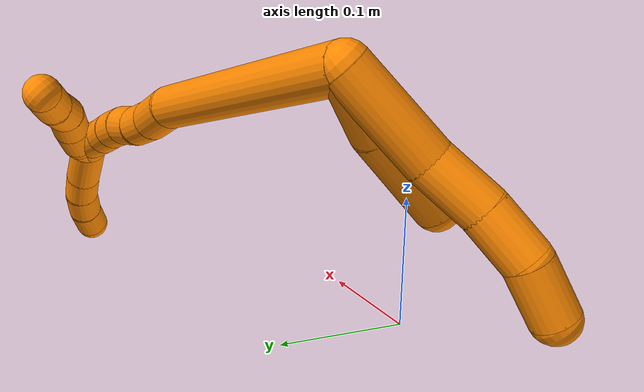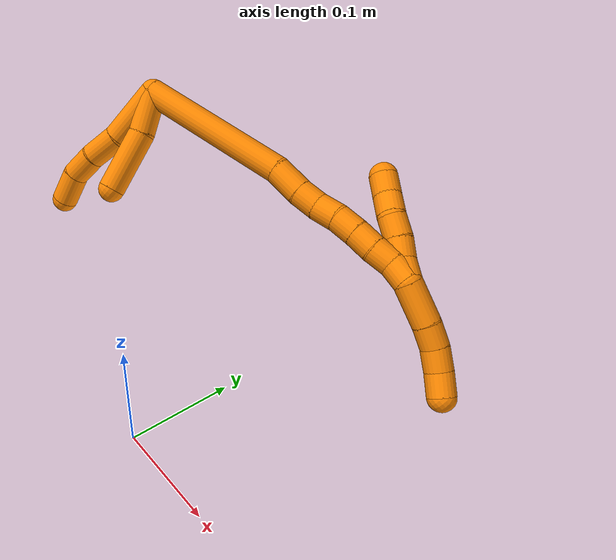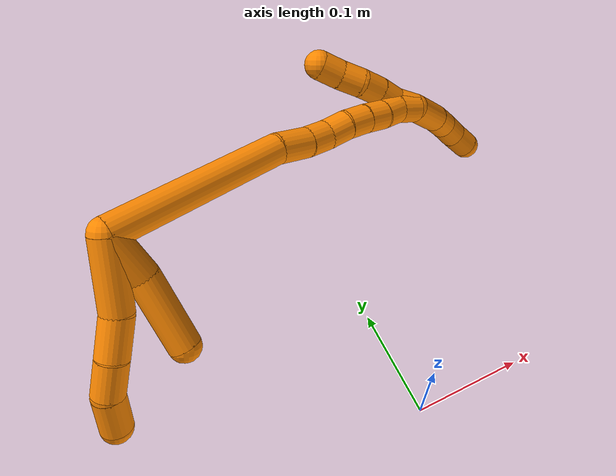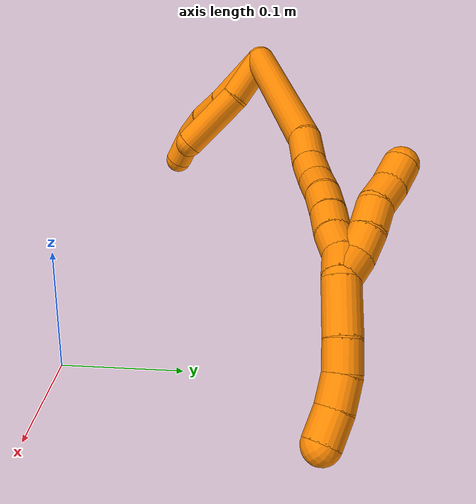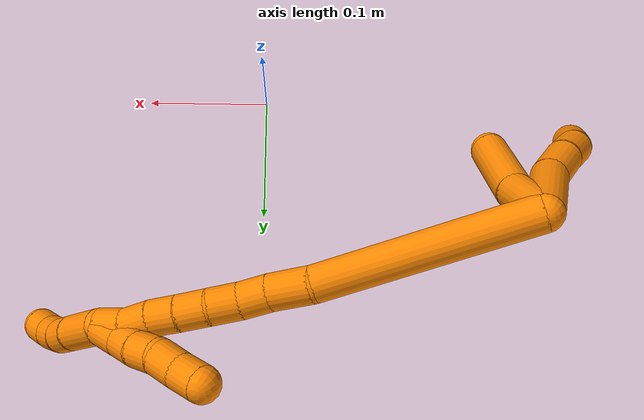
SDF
<sdf version="1.7">
 <world name="default">
  <model name="19">
   <static>0</static>
   <link name="19">
    <collision name="collision-cylinder-e_1_2_8">
     <pose>0.001446 -0.000258 -0.028448 3.13252 0.050796 2.78809</pose>
     <geometry><cylinder><radius>0.0125</radius><length>0.056973</length></cylinder></geometry>
     <surface>
      <friction><ode><mu>1.16</mu><mu2>1.16</mu2><slip1>0</slip1><slip2>0</slip2></ode></friction>
      <contact><ode><kp>1e+06</kp><kd>1</kd><max_vel>0</max_vel><min_depth>0.001</min_depth></ode></contact>
     </surface>
    </collision>
    <visual name="visual-cylinder-e_1_2_8">
     <pose>0.001446 -0.000258 -0.028448 3.13252 0.050796 2.78809</pose>
     <geometry><cylinder><radius>0.0125</radius><length>0.056973</length></cylinder></geometry>
     <material><ambient>0.996078 0.537255 0 1</ambient></material>
    </visual>
    <collision name="collision-cylinder-e_2_8_9">
     <pose>-0.000135 -0.001066 -0.072957 3.10739 -0.186201 -2.77926</pose>
     <geometry><cylinder><radius>0.0125</radius><length>0.032705</length></cylinder></geometry>
     <surface>
      <friction><ode><mu>1.16</mu><mu2>1.16</mu2><slip1>0</slip1><slip2>0</slip2></ode></friction>
      <contact><ode><kp>1e+06</kp><kd>1</kd><max_vel>0</max_vel><min_depth>0.001</min_depth></ode></contact>
     </surface>
    </collision>
    <visual name="visual-cylinder-e_2_8_9">
     <pose>-0.000135 -0.001066 -0.072957 3.10739 -0.186201 -2.77926</pose>
     <geometry><cylinder><radius>0.0125</radius><length>0.032705</length></cylinder></geometry>
     <material><ambient>0.996078 0.537255 0 1</ambient></material>
    </visual>
    <collision name="collision-cylinder-e_3_9_10">
     <pose>-0.005509 -0.000114 -0.103289 -3.0368 -0.162138 1.99518</pose>
     <geometry><cylinder><radius>0.0125</radius><length>0.029083</length></cylinder></geometry>
     <surface>
      <friction><ode><mu>1.16</mu><mu2>1.16</mu2><slip1>0</slip1><slip2>0</slip2></ode></friction>
      <contact><ode><kp>1e+06</kp><kd>1</kd><max_vel>0</max_vel><min_depth>0.001</min_depth></ode></contact>
     </surface>
    </collision>
    <visual name="visual-cylinder-e_3_9_10">
     <pose>-0.005509 -0.000114 -0.103289 -3.0368 -0.162138 1.99518</pose>
     <geometry><cylinder><radius>0.0125</radius><length>0.029083</length></cylinder></geometry>
     <material><ambient>0.996078 0.537255 0 1</ambient></material>
    </visual>
    <collision name="collision-cylinder-e_4_10_6">
     <pose>-0.0056 0.004881 -0.132617 -2.91357 0.144998 -1.13043</pose>
     <geometry><cylinder><radius>0.0125</radius><length>0.03124</length></cylinder></geometry>
     <surface>
      <friction><ode><mu>1.16</mu><mu2>1.16</mu2><slip1>0</slip1><slip2>0</slip2></ode></friction>
      <contact><ode><kp>1e+06</kp><kd>1</kd><max_vel>0</max_vel><min_depth>0.001</min_depth></ode></contact>
     </surface>
    </collision>
    <visual name="visual-cylinder-e_4_10_6">
     <pose>-0.0056 0.004881 -0.132617 -2.91357 0.144998 -1.13043</pose>
     <geometry><cylinder><radius>0.0125</radius><length>0.03124</length></cylinder></geometry>
     <material><ambient>0.996078 0.537255 0 1</ambient></material>
    </visual>
    <collision name="collision-cylinder-e_1_2_11">
     <pose>0.011064 0.000808 -0.016724 -3.09334 0.583924 -2.98137</pose>
     <geometry><cylinder><radius>0.0125</radius><length>0.040138</length></cylinder></geometry>
     <surface>
      <friction><ode><mu>1.16</mu><mu2>1.16</mu2><slip1>0</slip1><slip2>0</slip2></ode></friction>
      <contact><ode><kp>1e+06</kp><kd>1</kd><max_vel>0</max_vel><min_depth>0.001</min_depth></ode></contact>
     </surface>
    </collision>
    <visual name="visual-cylinder-e_1_2_11">
     <pose>0.011064 0.000808 -0.016724 -3.09334 0.583924 -2.98137</pose>
     <geometry><cylinder><radius>0.0125</radius><length>0.040138</length></cylinder></geometry>
     <material><ambient>0.996078 0.537255 0 1</ambient></material>
    </visual>
    <collision name="collision-cylinder-e_2_11_5">
     <pose>0.0344 -0.001616 -0.060556 3.02298 0.422476 2.60132</pose>
     <geometry><cylinder><radius>0.0125</radius><length>0.059862</length></cylinder></geometry>
     <surface>
      <friction><ode><mu>1.16</mu><mu2>1.16</mu2><slip1>0</slip1><slip2>0</slip2></ode></friction>
      <contact><ode><kp>1e+06</kp><kd>1</kd><max_vel>0</max_vel><min_depth>0.001</min_depth></ode></contact>
     </surface>
    </collision>
    <visual name="visual-cylinder-e_2_11_5">
     <pose>0.0344 -0.001616 -0.060556 3.02298 0.422476 2.60132</pose>
     <geometry><cylinder><radius>0.0125</radius><length>0.059862</length></cylinder></geometry>
     <material><ambient>0.996078 0.537255 0 1</ambient></material>
    </visual>
    <collision name="collision-cylinder-e_1_2_12">
     <pose>0.067925 0.019973 0.021052 -0.759101 1.16705 -0.515014</pose>
     <geometry><cylinder><radius>0.0125</radius><length>0.147728</length></cylinder></geometry>
     <surface>
      <friction><ode><mu>1.16</mu><mu2>1.16</mu2><slip1>0</slip1><slip2>0</slip2></ode></friction>
      <contact><ode><kp>1e+06</kp><kd>1</kd><max_vel>0</max_vel><min_depth>0.001</min_depth></ode></contact>
     </surface>
    </collision>
    <visual name="visual-cylinder-e_1_2_12">
     <pose>0.067925 0.019973 0.021052 -0.759101 1.16705 -0.515014</pose>
     <geometry><cylinder><radius>0.0125</radius><length>0.147728</length></cylinder></geometry>
     <material><ambient>0.996078 0.537255 0 1</ambient></material>
    </visual>
    <collision name="collision-cylinder-e_2_12_13">
     <pose>0.149934 0.043625 0.043283 -1.26056 1.30308 -1.01545</pose>
     <geometry><cylinder><radius>0.0125</radius><length>0.029209</length></cylinder></geometry>
     <surface>
      <friction><ode><mu>1.16</mu><mu2>1.16</mu2><slip1>0</slip1><slip2>0</slip2></ode></friction>
      <contact><ode><kp>1e+06</kp><kd>1</kd><max_vel>0</max_vel><min_depth>0.001</min_depth></ode></contact>
     </surface>
    </collision>
    <visual name="visual-cylinder-e_2_12_13">
     <pose>0.149934 0.043625 0.043283 -1.26056 1.30308 -1.01545</pose>
     <geometry><cylinder><radius>0.0125</radius><length>0.029209</length></cylinder></geometry>
     <material><ambient>0.996078 0.537255 0 1</ambient></material>
    </visual>
    <collision name="collision-cylinder-e_3_13_14">
     <pose>0.173793 0.050274 0.046475 -0.975515 1.21903 -0.709466</pose>
     <geometry><cylinder><radius>0.0125</radius><length>0.020824</length></cylinder></geometry>
     <surface>
      <friction><ode><mu>1.16</mu><mu2>1.16</mu2><slip1>0</slip1><slip2>0</slip2></ode></friction>
      <contact><ode><kp>1e+06</kp><kd>1</kd><max_vel>0</max_vel><min_depth>0.001</min_depth></ode></contact>
     </surface>
    </collision>
    <visual name="visual-cylinder-e_3_13_14">
     <pose>0.173793 0.050274 0.046475 -0.975515 1.21903 -0.709466</pose>
     <geometry><cylinder><radius>0.0125</radius><length>0.020824</length></cylinder></geometry>
     <material><ambient>0.996078 0.537255 0 1</ambient></material>
    </visual>
    <collision name="collision-cylinder-e_4_14_15">
     <pose>0.193477 0.05477 0.05198 -0.411645 1.20352 -0.284807</pose>
     <geometry><cylinder><radius>0.0125</radius><length>0.021235</length></cylinder></geometry>
     <surface>
      <friction><ode><mu>1.16</mu><mu2>1.16</mu2><slip1>0</slip1><slip2>0</slip2></ode></friction>
      <contact><ode><kp>1e+06</kp><kd>1</kd><max_vel>0</max_vel><min_depth>0.001</min_depth></ode></contact>
     </surface>
    </collision>
    <visual name="visual-cylinder-e_4_14_15">
     <pose>0.193477 0.05477 0.05198 -0.411645 1.20352 -0.284807</pose>
     <geometry><cylinder><radius>0.0125</radius><length>0.021235</length></cylinder></geometry>
     <material><ambient>0.996078 0.537255 0 1</ambient></material>
    </visual>
    <collision name="collision-cylinder-e_5_15_16">
     <pose>0.21339 0.058553 0.057392 -0.866659 1.28289 -0.665334</pose>
     <geometry><cylinder><radius>0.0125</radius><length>0.020866</length></cylinder></geometry>
     <surface>
      <friction><ode><mu>1.16</mu><mu2>1.16</mu2><slip1>0</slip1><slip2>0</slip2></ode></friction>
      <contact><ode><kp>1e+06</kp><kd>1</kd><max_vel>0</max_vel><min_depth>0.001</min_depth></ode></contact>
     </surface>
    </collision>
    <visual name="visual-cylinder-e_5_15_16">
     <pose>0.21339 0.058553 0.057392 -0.866659 1.28289 -0.665334</pose>
     <geometry><cylinder><radius>0.0125</radius><length>0.020866</length></cylinder></geometry>
     <material><ambient>0.996078 0.537255 0 1</ambient></material>
    </visual>
    <collision name="collision-cylinder-e_6_16_17">
     <pose>0.233122 0.063117 0.060447 -1.11254 1.31246 -0.893109</pose>
     <geometry><cylinder><radius>0.0125</radius><length>0.020124</length></cylinder></geometry>
     <surface>
      <friction><ode><mu>1.16</mu><mu2>1.16</mu2><slip1>0</slip1><slip2>0</slip2></ode></friction>
      <contact><ode><kp>1e+06</kp><kd>1</kd><max_vel>0</max_vel><min_depth>0.001</min_depth></ode></contact>
     </surface>
    </collision>
    <visual name="visual-cylinder-e_6_16_17">
     <pose>0.233122 0.063117 0.060447 -1.11254 1.31246 -0.893109</pose>
     <geometry><cylinder><radius>0.0125</radius><length>0.020124</length></cylinder></geometry>
     <material><ambient>0.996078 0.537255 0 1</ambient></material>
    </visual>
    <collision name="collision-cylinder-e_7_17_18">
     <pose>0.25212 0.06865 0.063493 -1.03683 1.18638 -0.734313</pose>
     <geometry><cylinder><radius>0.0125</radius><length>0.020001</length></cylinder></geometry>
     <surface>
      <friction><ode><mu>1.16</mu><mu2>1.16</mu2><slip1>0</slip1><slip2>0</slip2></ode></friction>
      <contact><ode><kp>1e+06</kp><kd>1</kd><max_vel>0</max_vel><min_depth>0.001</min_depth></ode></contact>
     </surface>
    </collision>
    <visual name="visual-cylinder-e_7_17_18">
     <pose>0.25212 0.06865 0.063493 -1.03683 1.18638 -0.734313</pose>
     <geometry><cylinder><radius>0.0125</radius><length>0.020001</length></cylinder></geometry>
     <material><ambient>0.996078 0.537255 0 1</ambient></material>
    </visual>
    <collision name="collision-cylinder-e_8_18_1">
     <pose>0.271328 0.073041 0.065244 -1.70527 1.45329 -1.5879</pose>
     <geometry><cylinder><radius>0.0125</radius><length>0.020013</length></cylinder></geometry>
     <surface>
      <friction><ode><mu>1.16</mu><mu2>1.16</mu2><slip1>0</slip1><slip2>0</slip2></ode></friction>
      <contact><ode><kp>1e+06</kp><kd>1</kd><max_vel>0</max_vel><min_depth>0.001</min_depth></ode></contact>
     </surface>
    </collision>
    <visual name="visual-cylinder-e_8_18_1">
     <pose>0.271328 0.073041 0.065244 -1.70527 1.45329 -1.5879</pose>
     <geometry><cylinder><radius>0.0125</radius><length>0.020013</length></cylinder></geometry>
     <material><ambient>0.996078 0.537255 0 1</ambient></material>
    </visual>
    <collision name="collision-cylinder-e_1_1_19">
     <pose>0.297055 0.082214 0.059143 -2.20916 1.00735 -1.66154</pose>
     <geometry><cylinder><radius>0.0125</radius><length>0.037353</length></cylinder></geometry>
     <surface>
      <friction><ode><mu>1.16</mu><mu2>1.16</mu2><slip1>0</slip1><slip2>0</slip2></ode></friction>
      <contact><ode><kp>1e+06</kp><kd>1</kd><max_vel>0</max_vel><min_depth>0.001</min_depth></ode></contact>
     </surface>
    </collision>
    <visual name="visual-cylinder-e_1_1_19">
     <pose>0.297055 0.082214 0.059143 -2.20916 1.00735 -1.66154</pose>
     <geometry><cylinder><radius>0.0125</radius><length>0.037353</length></cylinder></geometry>
     <material><ambient>0.996078 0.537255 0 1</ambient></material>
    </visual>
    <collision name="collision-cylinder-e_2_19_20">
     <pose>0.321073 0.094912 0.048998 -2.3017 0.917795 -1.67185</pose>
     <geometry><cylinder><radius>0.0125</radius><length>0.020718</length></cylinder></geometry>
     <surface>
      <friction><ode><mu>1.16</mu><mu2>1.16</mu2><slip1>0</slip1><slip2>0</slip2></ode></friction>
      <contact><ode><kp>1e+06</kp><kd>1</kd><max_vel>0</max_vel><min_depth>0.001</min_depth></ode></contact>
     </surface>
    </collision>
    <visual name="visual-cylinder-e_2_19_20">
     <pose>0.321073 0.094912 0.048998 -2.3017 0.917795 -1.67185</pose>
     <geometry><cylinder><radius>0.0125</radius><length>0.020718</length></cylinder></geometry>
     <material><ambient>0.996078 0.537255 0 1</ambient></material>
    </visual>
    <collision name="collision-cylinder-e_3_20_21">
     <pose>0.337545 0.102547 0.039291 -2.64979 0.922545 -2.20638</pose>
     <geometry><cylinder><radius>0.0125</radius><length>0.020686</length></cylinder></geometry>
     <surface>
      <friction><ode><mu>1.16</mu><mu2>1.16</mu2><slip1>0</slip1><slip2>0</slip2></ode></friction>
      <contact><ode><kp>1e+06</kp><kd>1</kd><max_vel>0</max_vel><min_depth>0.001</min_depth></ode></contact>
     </surface>
    </collision>
    <visual name="visual-cylinder-e_3_20_21">
     <pose>0.337545 0.102547 0.039291 -2.64979 0.922545 -2.20638</pose>
     <geometry><cylinder><radius>0.0125</radius><length>0.020686</length></cylinder></geometry>
     <material><ambient>0.996078 0.537255 0 1</ambient></material>
    </visual>
    <collision name="collision-cylinder-e_4_21_4">
     <pose>0.3545 0.106933 0.027881 -2.90285 0.961588 -2.68956</pose>
     <geometry><cylinder><radius>0.0125</radius><length>0.021243</length></cylinder></geometry>
     <surface>
      <friction><ode><mu>1.16</mu><mu2>1.16</mu2><slip1>0</slip1><slip2>0</slip2></ode></friction>
      <contact><ode><kp>1e+06</kp><kd>1</kd><max_vel>0</max_vel><min_depth>0.001</min_depth></ode></contact>
     </surface>
    </collision>
    <visual name="visual-cylinder-e_4_21_4">
     <pose>0.3545 0.106933 0.027881 -2.90285 0.961588 -2.68956</pose>
     <geometry><cylinder><radius>0.0125</radius><length>0.021243</length></cylinder></geometry>
     <material><ambient>0.996078 0.537255 0 1</ambient></material>
    </visual>
    <collision name="collision-cylinder-e_1_1_22">
     <pose>0.271955 0.07644 0.067971 -0.65959 -1.19722 0.458741</pose>
     <geometry><cylinder><radius>0.0125</radius><length>0.02</length></cylinder></geometry>
     <surface>
      <friction><ode><mu>1.16</mu><mu2>1.16</mu2><slip1>0</slip1><slip2>0</slip2></ode></friction>
      <contact><ode><kp>1e+06</kp><kd>1</kd><max_vel>0</max_vel><min_depth>0.001</min_depth></ode></contact>
     </surface>
    </collision>
    <visual name="visual-cylinder-e_1_1_22">
     <pose>0.271955 0.07644 0.067971 -0.65959 -1.19722 0.458741</pose>
     <geometry><cylinder><radius>0.0125</radius><length>0.02</length></cylinder></geometry>
     <material><ambient>0.996078 0.537255 0 1</ambient></material>
    </visual>
    <collision name="collision-cylinder-e_2_22_23">
     <pose>0.253966 0.078242 0.075804 0.087477 -1.05086 -0.05074</pose>
     <geometry><cylinder><radius>0.0125</radius><length>0.02</length></cylinder></geometry>
     <surface>
      <friction><ode><mu>1.16</mu><mu2>1.16</mu2><slip1>0</slip1><slip2>0</slip2></ode></friction>
      <contact><ode><kp>1e+06</kp><kd>1</kd><max_vel>0</max_vel><min_depth>0.001</min_depth></ode></contact>
     </surface>
    </collision>
    <visual name="visual-cylinder-e_2_22_23">
     <pose>0.253966 0.078242 0.075804 0.087477 -1.05086 -0.05074</pose>
     <geometry><cylinder><radius>0.0125</radius><length>0.02</length></cylinder></geometry>
     <material><ambient>0.996078 0.537255 0 1</ambient></material>
    </visual>
    <collision name="collision-cylinder-e_3_23_24">
     <pose>0.236054 0.076825 0.084465 0.258953 -1.17678 -0.173317</pose>
     <geometry><cylinder><radius>0.0125</radius><length>0.02</length></cylinder></geometry>
     <surface>
      <friction><ode><mu>1.16</mu><mu2>1.16</mu2><slip1>0</slip1><slip2>0</slip2></ode></friction>
      <contact><ode><kp>1e+06</kp><kd>1</kd><max_vel>0</max_vel><min_depth>0.001</min_depth></ode></contact>
     </surface>
    </collision>
    <visual name="visual-cylinder-e_3_23_24">
     <pose>0.236054 0.076825 0.084465 0.258953 -1.17678 -0.173317</pose>
     <geometry><cylinder><radius>0.0125</radius><length>0.02</length></cylinder></geometry>
     <material><ambient>0.996078 0.537255 0 1</ambient></material>
    </visual>
    <collision name="collision-cylinder-e_4_24_25">
     <pose>0.21768 0.077927 0.091654 -0.539818 -1.15322 0.356032</pose>
     <geometry><cylinder><radius>0.0125</radius><length>0.02</length></cylinder></geometry>
     <surface>
      <friction><ode><mu>1.16</mu><mu2>1.16</mu2><slip1>0</slip1><slip2>0</slip2></ode></friction>
      <contact><ode><kp>1e+06</kp><kd>1</kd><max_vel>0</max_vel><min_depth>0.001</min_depth></ode></contact>
     </surface>
    </collision>
    <visual name="visual-cylinder-e_4_24_25">
     <pose>0.21768 0.077927 0.091654 -0.539818 -1.15322 0.356032</pose>
     <geometry><cylinder><radius>0.0125</radius><length>0.02</length></cylinder></geometry>
     <material><ambient>0.996078 0.537255 0 1</ambient></material>
    </visual>
    <collision name="collision-cylinder-e_5_25_3">
     <pose>0.199437 0.08071 0.099216 -0.169634 -1.14375 0.109333</pose>
     <geometry><cylinder><radius>0.0125</radius><length>0.02</length></cylinder></geometry>
     <surface>
      <friction><ode><mu>1.16</mu><mu2>1.16</mu2><slip1>0</slip1><slip2>0</slip2></ode></friction>
      <contact><ode><kp>1e+06</kp><kd>1</kd><max_vel>0</max_vel><min_depth>0.001</min_depth></ode></contact>
     </surface>
    </collision>
    <visual name="visual-cylinder-e_5_25_3">
     <pose>0.199437 0.08071 0.099216 -0.169634 -1.14375 0.109333</pose>
     <geometry><cylinder><radius>0.0125</radius><length>0.02</length></cylinder></geometry>
     <material><ambient>0.996078 0.537255 0 1</ambient></material>
    </visual>
    <collision name="collision-sphere-3">
     <pose>0.190335 0.081409 0.103298 0 -0 0</pose>
     <geometry><sphere><radius>0.0125</radius></sphere></geometry>
     <surface>
      <friction><ode><mu>1.16</mu><mu2>1.16</mu2><slip1>0</slip1><slip2>0</slip2></ode></friction>
      <contact><ode><kp>1e+06</kp><kd>1</kd><max_vel>0</max_vel><min_depth>0.001</min_depth></ode></contact>
     </surface>
    </collision>
    <visual name="visual-sphere-3">
     <pose>0.190335 0.081409 0.103298 0 -0 0</pose>
     <geometry><sphere><radius>0.0125</radius></sphere></geometry>
     <material><ambient>0.996078 0.537255 0 1</ambient></material>
    </visual>
    <collision name="collision-sphere-25">
     <pose>0.208539 0.080011 0.095133 0 -0 0</pose>
     <geometry><sphere><radius>0.0125</radius></sphere></geometry>
     <surface>
      <friction><ode><mu>1.16</mu><mu2>1.16</mu2><slip1>0</slip1><slip2>0</slip2></ode></friction>
      <contact><ode><kp>1e+06</kp><kd>1</kd><max_vel>0</max_vel><min_depth>0.001</min_depth></ode></contact>
     </surface>
    </collision>
    <visual name="visual-sphere-25">
     <pose>0.208539 0.080011 0.095133 0 -0 0</pose>
     <geometry><sphere><radius>0.0125</radius></sphere></geometry>
     <material><ambient>0.996078 0.537255 0 1</ambient></material>
    </visual>
    <collision name="collision-sphere-24">
     <pose>0.22682 0.075842 0.088176 0 -0 0</pose>
     <geometry><sphere><radius>0.0125</radius></sphere></geometry>
     <surface>
      <friction><ode><mu>1.16</mu><mu2>1.16</mu2><slip1>0</slip1><slip2>0</slip2></ode></friction>
      <contact><ode><kp>1e+06</kp><kd>1</kd><max_vel>0</max_vel><min_depth>0.001</min_depth></ode></contact>
     </surface>
    </collision>
    <visual name="visual-sphere-24">
     <pose>0.22682 0.075842 0.088176 0 -0 0</pose>
     <geometry><sphere><radius>0.0125</radius></sphere></geometry>
     <material><ambient>0.996078 0.537255 0 1</ambient></material>
    </visual>
    <collision name="collision-sphere-23">
     <pose>0.245288 0.077808 0.080753 0 -0 0</pose>
     <geometry><sphere><radius>0.0125</radius></sphere></geometry>
     <surface>
      <friction><ode><mu>1.16</mu><mu2>1.16</mu2><slip1>0</slip1><slip2>0</slip2></ode></friction>
      <contact><ode><kp>1e+06</kp><kd>1</kd><max_vel>0</max_vel><min_depth>0.001</min_depth></ode></contact>
     </surface>
    </collision>
    <visual name="visual-sphere-23">
     <pose>0.245288 0.077808 0.080753 0 -0 0</pose>
     <geometry><sphere><radius>0.0125</radius></sphere></geometry>
     <material><ambient>0.996078 0.537255 0 1</ambient></material>
    </visual>
    <collision name="collision-sphere-22">
     <pose>0.262645 0.078676 0.070855 0 -0 0</pose>
     <geometry><sphere><radius>0.0125</radius></sphere></geometry>
     <surface>
      <friction><ode><mu>1.16</mu><mu2>1.16</mu2><slip1>0</slip1><slip2>0</slip2></ode></friction>
      <contact><ode><kp>1e+06</kp><kd>1</kd><max_vel>0</max_vel><min_depth>0.001</min_depth></ode></contact>
     </surface>
    </collision>
    <visual name="visual-sphere-22">
     <pose>0.262645 0.078676 0.070855 0 -0 0</pose>
     <geometry><sphere><radius>0.0125</radius></sphere></geometry>
     <material><ambient>0.996078 0.537255 0 1</ambient></material>
    </visual>
    <collision name="collision-sphere-4">
     <pose>0.363211 0.10837 0.021976 0 -0 0</pose>
     <geometry><sphere><radius>0.0125</radius></sphere></geometry>
     <surface>
      <friction><ode><mu>1.16</mu><mu2>1.16</mu2><slip1>0</slip1><slip2>0</slip2></ode></friction>
      <contact><ode><kp>1e+06</kp><kd>1</kd><max_vel>0</max_vel><min_depth>0.001</min_depth></ode></contact>
     </surface>
    </collision>
    <visual name="visual-sphere-4">
     <pose>0.363211 0.10837 0.021976 0 -0 0</pose>
     <geometry><sphere><radius>0.0125</radius></sphere></geometry>
     <material><ambient>0.996078 0.537255 0 1</ambient></material>
    </visual>
    <collision name="collision-sphere-21">
     <pose>0.34579 0.105496 0.033787 0 -0 0</pose>
     <geometry><sphere><radius>0.0125</radius></sphere></geometry>
     <surface>
      <friction><ode><mu>1.16</mu><mu2>1.16</mu2><slip1>0</slip1><slip2>0</slip2></ode></friction>
      <contact><ode><kp>1e+06</kp><kd>1</kd><max_vel>0</max_vel><min_depth>0.001</min_depth></ode></contact>
     </surface>
    </collision>
    <visual name="visual-sphere-21">
     <pose>0.34579 0.105496 0.033787 0 -0 0</pose>
     <geometry><sphere><radius>0.0125</radius></sphere></geometry>
     <material><ambient>0.996078 0.537255 0 1</ambient></material>
    </visual>
    <collision name="collision-sphere-20">
     <pose>0.3293 0.099598 0.044796 0 -0 0</pose>
     <geometry><sphere><radius>0.0125</radius></sphere></geometry>
     <surface>
      <friction><ode><mu>1.16</mu><mu2>1.16</mu2><slip1>0</slip1><slip2>0</slip2></ode></friction>
      <contact><ode><kp>1e+06</kp><kd>1</kd><max_vel>0</max_vel><min_depth>0.001</min_depth></ode></contact>
     </surface>
    </collision>
    <visual name="visual-sphere-20">
     <pose>0.3293 0.099598 0.044796 0 -0 0</pose>
     <geometry><sphere><radius>0.0125</radius></sphere></geometry>
     <material><ambient>0.996078 0.537255 0 1</ambient></material>
    </visual>
    <collision name="collision-sphere-11">
     <pose>0.022128 0.001615 -0.033448 0 -0 0</pose>
     <geometry><sphere><radius>0.0125</radius></sphere></geometry>
     <surface>
      <friction><ode><mu>1.16</mu><mu2>1.16</mu2><slip1>0</slip1><slip2>0</slip2></ode></friction>
      <contact><ode><kp>1e+06</kp><kd>1</kd><max_vel>0</max_vel><min_depth>0.001</min_depth></ode></contact>
     </surface>
    </collision>
    <visual name="visual-sphere-11">
     <pose>0.022128 0.001615 -0.033448 0 -0 0</pose>
     <geometry><sphere><radius>0.0125</radius></sphere></geometry>
     <material><ambient>0.996078 0.537255 0 1</ambient></material>
    </visual>
    <collision name="collision-sphere-6">
     <pose>-0.003343 0.008375 -0.147673 0 -0 0</pose>
     <geometry><sphere><radius>0.0125</radius></sphere></geometry>
     <surface>
      <friction><ode><mu>1.16</mu><mu2>1.16</mu2><slip1>0</slip1><slip2>0</slip2></ode></friction>
      <contact><ode><kp>1e+06</kp><kd>1</kd><max_vel>0</max_vel><min_depth>0.001</min_depth></ode></contact>
     </surface>
    </collision>
    <visual name="visual-sphere-6">
     <pose>-0.003343 0.008375 -0.147673 0 -0 0</pose>
     <geometry><sphere><radius>0.0125</radius></sphere></geometry>
     <material><ambient>0.996078 0.537255 0 1</ambient></material>
    </visual>
    <collision name="collision-sphere-10">
     <pose>-0.007857 0.001387 -0.117561 0 -0 0</pose>
     <geometry><sphere><radius>0.0125</radius></sphere></geometry>
     <surface>
      <friction><ode><mu>1.16</mu><mu2>1.16</mu2><slip1>0</slip1><slip2>0</slip2></ode></friction>
      <contact><ode><kp>1e+06</kp><kd>1</kd><max_vel>0</max_vel><min_depth>0.001</min_depth></ode></contact>
     </surface>
    </collision>
    <visual name="visual-sphere-10">
     <pose>-0.007857 0.001387 -0.117561 0 -0 0</pose>
     <geometry><sphere><radius>0.0125</radius></sphere></geometry>
     <material><ambient>0.996078 0.537255 0 1</ambient></material>
    </visual>
    <collision name="collision-sphere-9">
     <pose>-0.003162 -0.001615 -0.089017 0 -0 0</pose>
     <geometry><sphere><radius>0.0125</radius></sphere></geometry>
     <surface>
      <friction><ode><mu>1.16</mu><mu2>1.16</mu2><slip1>0</slip1><slip2>0</slip2></ode></friction>
      <contact><ode><kp>1e+06</kp><kd>1</kd><max_vel>0</max_vel><min_depth>0.001</min_depth></ode></contact>
     </surface>
    </collision>
    <visual name="visual-sphere-9">
     <pose>-0.003162 -0.001615 -0.089017 0 -0 0</pose>
     <geometry><sphere><radius>0.0125</radius></sphere></geometry>
     <material><ambient>0.996078 0.537255 0 1</ambient></material>
    </visual>
    <collision name="collision-sphere-2">
     <geometry><sphere><radius>0.0125</radius></sphere></geometry>
     <surface>
      <friction><ode><mu>1.16</mu><mu2>1.16</mu2><slip1>0</slip1><slip2>0</slip2></ode></friction>
      <contact><ode><kp>1e+06</kp><kd>1</kd><max_vel>0</max_vel><min_depth>0.001</min_depth></ode></contact>
     </surface>
    </collision>
    <visual name="visual-sphere-2">
     <geometry><sphere><radius>0.0125</radius></sphere></geometry>
     <material><ambient>0.996078 0.537255 0 1</ambient></material>
    </visual>
    <collision name="collision-sphere-19">
     <pose>0.312845 0.090225 0.053199 0 -0 0</pose>
     <geometry><sphere><radius>0.0125</radius></sphere></geometry>
     <surface>
      <friction><ode><mu>1.16</mu><mu2>1.16</mu2><slip1>0</slip1><slip2>0</slip2></ode></friction>
      <contact><ode><kp>1e+06</kp><kd>1</kd><max_vel>0</max_vel><min_depth>0.001</min_depth></ode></contact>
     </surface>
    </collision>
    <visual name="visual-sphere-19">
     <pose>0.312845 0.090225 0.053199 0 -0 0</pose>
     <geometry><sphere><radius>0.0125</radius></sphere></geometry>
     <material><ambient>0.996078 0.537255 0 1</ambient></material>
    </visual>
    <collision name="collision-sphere-8">
     <pose>0.002893 -0.000516 -0.056897 0 -0 0</pose>
     <geometry><sphere><radius>0.0125</radius></sphere></geometry>
     <surface>
      <friction><ode><mu>1.16</mu><mu2>1.16</mu2><slip1>0</slip1><slip2>0</slip2></ode></friction>
      <contact><ode><kp>1e+06</kp><kd>1</kd><max_vel>0</max_vel><min_depth>0.001</min_depth></ode></contact>
     </surface>
    </collision>
    <visual name="visual-sphere-8">
     <pose>0.002893 -0.000516 -0.056897 0 -0 0</pose>
     <geometry><sphere><radius>0.0125</radius></sphere></geometry>
     <material><ambient>0.996078 0.537255 0 1</ambient></material>
    </visual>
    <collision name="collision-sphere-5">
     <pose>0.046673 -0.004846 -0.087663 0 -0 0</pose>
     <geometry><sphere><radius>0.0125</radius></sphere></geometry>
     <surface>
      <friction><ode><mu>1.16</mu><mu2>1.16</mu2><slip1>0</slip1><slip2>0</slip2></ode></friction>
      <contact><ode><kp>1e+06</kp><kd>1</kd><max_vel>0</max_vel><min_depth>0.001</min_depth></ode></contact>
     </surface>
    </collision>
    <visual name="visual-sphere-5">
     <pose>0.046673 -0.004846 -0.087663 0 -0 0</pose>
     <geometry><sphere><radius>0.0125</radius></sphere></geometry>
     <material><ambient>0.996078 0.537255 0 1</ambient></material>
    </visual>
    <collision name="collision-sphere-12">
     <pose>0.13585 0.039946 0.042104 0 -0 0</pose>
     <geometry><sphere><radius>0.0125</radius></sphere></geometry>
     <surface>
      <friction><ode><mu>1.16</mu><mu2>1.16</mu2><slip1>0</slip1><slip2>0</slip2></ode></friction>
      <contact><ode><kp>1e+06</kp><kd>1</kd><max_vel>0</max_vel><min_depth>0.001</min_depth></ode></contact>
     </surface>
    </collision>
    <visual name="visual-sphere-12">
     <pose>0.13585 0.039946 0.042104 0 -0 0</pose>
     <geometry><sphere><radius>0.0125</radius></sphere></geometry>
     <material><ambient>0.996078 0.537255 0 1</ambient></material>
    </visual>
    <collision name="collision-sphere-13">
     <pose>0.164018 0.047304 0.044463 0 -0 0</pose>
     <geometry><sphere><radius>0.0125</radius></sphere></geometry>
     <surface>
      <friction><ode><mu>1.16</mu><mu2>1.16</mu2><slip1>0</slip1><slip2>0</slip2></ode></friction>
      <contact><ode><kp>1e+06</kp><kd>1</kd><max_vel>0</max_vel><min_depth>0.001</min_depth></ode></contact>
     </surface>
    </collision>
    <visual name="visual-sphere-13">
     <pose>0.164018 0.047304 0.044463 0 -0 0</pose>
     <geometry><sphere><radius>0.0125</radius></sphere></geometry>
     <material><ambient>0.996078 0.537255 0 1</ambient></material>
    </visual>
    <collision name="collision-sphere-14">
     <pose>0.183567 0.053245 0.048486 0 -0 0</pose>
     <geometry><sphere><radius>0.0125</radius></sphere></geometry>
     <surface>
      <friction><ode><mu>1.16</mu><mu2>1.16</mu2><slip1>0</slip1><slip2>0</slip2></ode></friction>
      <contact><ode><kp>1e+06</kp><kd>1</kd><max_vel>0</max_vel><min_depth>0.001</min_depth></ode></contact>
     </surface>
    </collision>
    <visual name="visual-sphere-14">
     <pose>0.183567 0.053245 0.048486 0 -0 0</pose>
     <geometry><sphere><radius>0.0125</radius></sphere></geometry>
     <material><ambient>0.996078 0.537255 0 1</ambient></material>
    </visual>
    <collision name="collision-sphere-15">
     <pose>0.203386 0.056295 0.055474 0 -0 0</pose>
     <geometry><sphere><radius>0.0125</radius></sphere></geometry>
     <surface>
      <friction><ode><mu>1.16</mu><mu2>1.16</mu2><slip1>0</slip1><slip2>0</slip2></ode></friction>
      <contact><ode><kp>1e+06</kp><kd>1</kd><max_vel>0</max_vel><min_depth>0.001</min_depth></ode></contact>
     </surface>
    </collision>
    <visual name="visual-sphere-15">
     <pose>0.203386 0.056295 0.055474 0 -0 0</pose>
     <geometry><sphere><radius>0.0125</radius></sphere></geometry>
     <material><ambient>0.996078 0.537255 0 1</ambient></material>
    </visual>
    <collision name="collision-sphere-16">
     <pose>0.223393 0.060811 0.05931 0 -0 0</pose>
     <geometry><sphere><radius>0.0125</radius></sphere></geometry>
     <surface>
      <friction><ode><mu>1.16</mu><mu2>1.16</mu2><slip1>0</slip1><slip2>0</slip2></ode></friction>
      <contact><ode><kp>1e+06</kp><kd>1</kd><max_vel>0</max_vel><min_depth>0.001</min_depth></ode></contact>
     </surface>
    </collision>
    <visual name="visual-sphere-16">
     <pose>0.223393 0.060811 0.05931 0 -0 0</pose>
     <geometry><sphere><radius>0.0125</radius></sphere></geometry>
     <material><ambient>0.996078 0.537255 0 1</ambient></material>
    </visual>
    <collision name="collision-sphere-17">
     <pose>0.24285 0.065422 0.061584 0 -0 0</pose>
     <geometry><sphere><radius>0.0125</radius></sphere></geometry>
     <surface>
      <friction><ode><mu>1.16</mu><mu2>1.16</mu2><slip1>0</slip1><slip2>0</slip2></ode></friction>
      <contact><ode><kp>1e+06</kp><kd>1</kd><max_vel>0</max_vel><min_depth>0.001</min_depth></ode></contact>
     </surface>
    </collision>
    <visual name="visual-sphere-17">
     <pose>0.24285 0.065422 0.061584 0 -0 0</pose>
     <geometry><sphere><radius>0.0125</radius></sphere></geometry>
     <material><ambient>0.996078 0.537255 0 1</ambient></material>
    </visual>
    <collision name="collision-sphere-18">
     <pose>0.261391 0.071878 0.065402 0 -0 0</pose>
     <geometry><sphere><radius>0.0125</radius></sphere></geometry>
     <surface>
      <friction><ode><mu>1.16</mu><mu2>1.16</mu2><slip1>0</slip1><slip2>0</slip2></ode></friction>
      <contact><ode><kp>1e+06</kp><kd>1</kd><max_vel>0</max_vel><min_depth>0.001</min_depth></ode></contact>
     </surface>
    </collision>
    <visual name="visual-sphere-18">
     <pose>0.261391 0.071878 0.065402 0 -0 0</pose>
     <geometry><sphere><radius>0.0125</radius></sphere></geometry>
     <material><ambient>0.996078 0.537255 0 1</ambient></material>
    </visual>
    <collision name="collision-sphere-1">
     <pose>0.281266 0.074204 0.065087 0 -0 0</pose>
     <geometry><sphere><radius>0.0125</radius></sphere></geometry>
     <surface>
      <friction><ode><mu>1.16</mu><mu2>1.16</mu2><slip1>0</slip1><slip2>0</slip2></ode></friction>
      <contact><ode><kp>1e+06</kp><kd>1</kd><max_vel>0</max_vel><min_depth>0.001</min_depth></ode></contact>
     </surface>
    </collision>
    <visual name="visual-sphere-1">
     <pose>0.281266 0.074204 0.065087 0 -0 0</pose>
     <geometry><sphere><radius>0.0125</radius></sphere></geometry>
     <material><ambient>0.996078 0.537255 0 1</ambient></material>
    </visual>
    <inertial>
     <pose>0.133129 0.038706 0.011996 0 -0 0</pose>
     <mass>0.75</mass>
     <inertia>
      <ixx>3.3e-05</ixx>
      <ixy>0</ixy>
      <ixz>0</ixz>
      <iyy>0.000293</iyy>
      <iyz>0</iyz>
      <izz>-0.000373</izz>
     </inertia>
    </inertial>
   </link>
   <pose>-0.178668 0.150768 0.218317 -0.708153 0.302807 -0.136679</pose>
  </model>
 </world>
</sdf>
